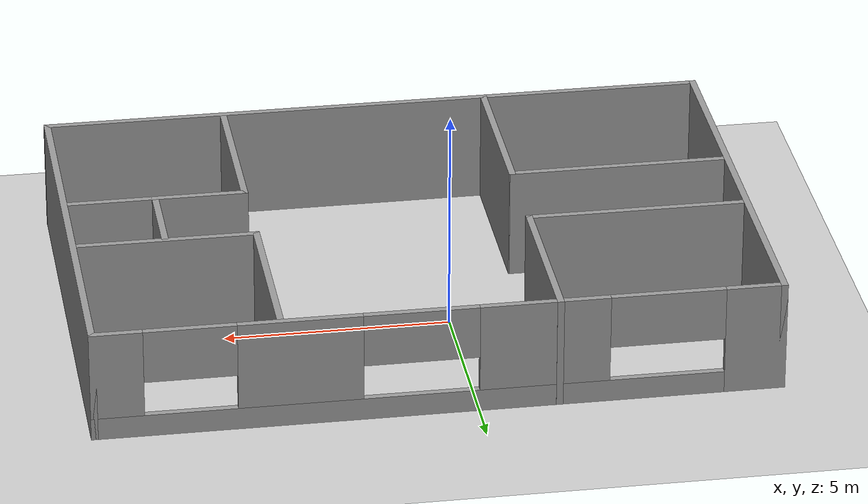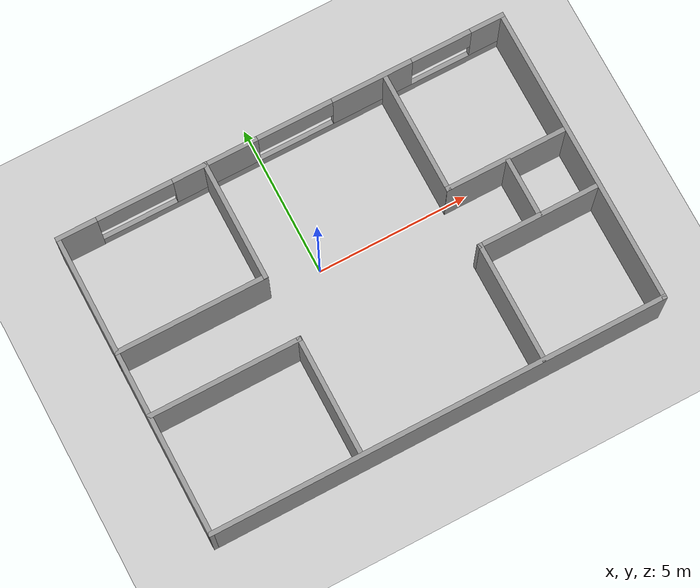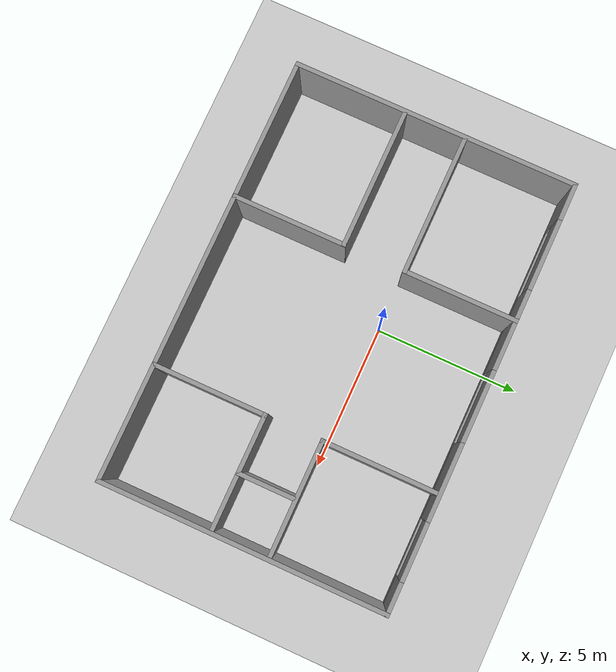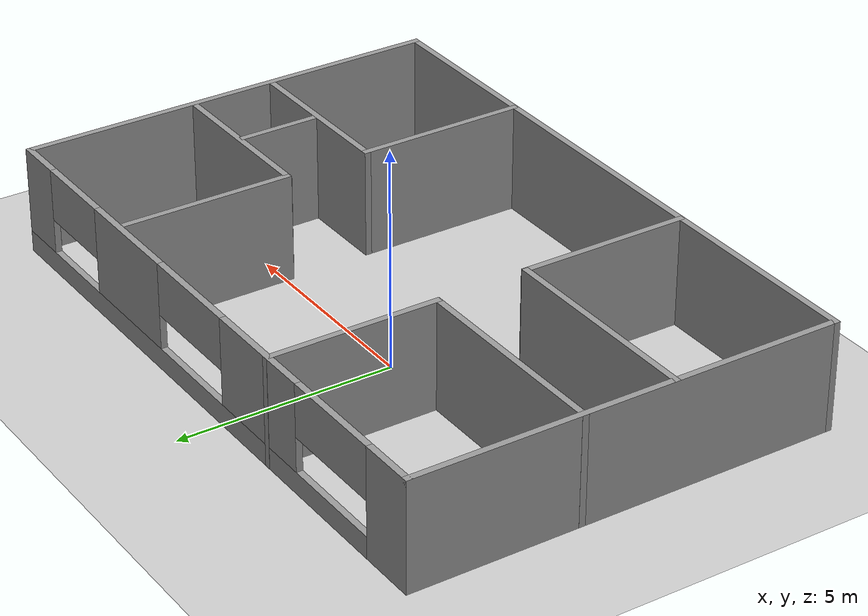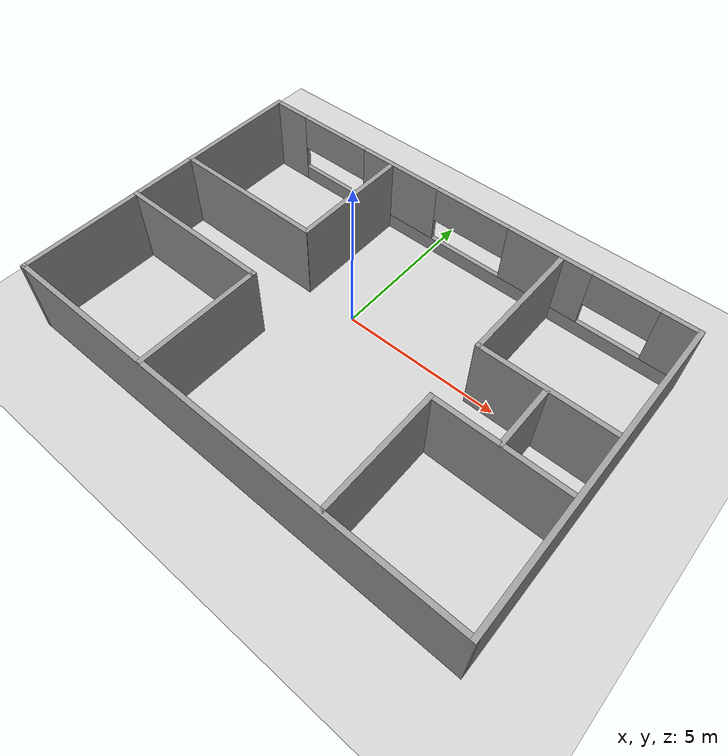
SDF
<sdf version="1.7">
 <world name="default">
  <light name="sun" type="directional">
   <pose>0 0 10 0 -0 0</pose>
   <diffuse>0.8 0.8 0.8 1</diffuse>
   <specular>0.2 0.2 0.2 1</specular>
   <attenuation>
    <range>1000</range>
    <constant>0.9</constant>
    <linear>0.01</linear>
    <quadratic>0.001</quadratic>
   </attenuation>
   <direction>-0.5 0.1 -0.9</direction>
   <spot><inner_angle>0</inner_angle><outer_angle>0</outer_angle><falloff>0</falloff></spot>
  </light>
  <model name="ground_plane">
   <static>1</static>
   <link name="link">
    <collision name="collision">
     <geometry><plane><normal>0 0 1</normal><size>100 100</size></plane></geometry>
     <surface><friction><ode><mu>100</mu><mu2>50</mu2></ode></friction></surface>
    </collision>
    <visual name="visual">
     <cast_shadows>0</cast_shadows>
     <geometry><plane><normal>0 0 1</normal><size>100 100</size></plane></geometry>
     <material>
      <script><uri>file://media/materials/scripts/gazebo.material</uri><name>Gazebo/Grey</name></script>
     </material>
    </visual>
   </link>
  </model>
  <gravity>0 0 -9.8</gravity>
  <magnetic_field>6e-06 2.3e-05 -4.2e-05</magnetic_field>
  <atmosphere type="adiabatic"/>
  <physics type="ode">
   <max_step_size>0.001</max_step_size>
   <real_time_factor>1</real_time_factor>
   <real_time_update_rate>1000</real_time_update_rate>
  </physics>
  <scene><ambient>0.4 0.4 0.4 1</ambient><background>0.7 0.7 0.7 1</background><shadows>1</shadows></scene>
  <audio><device>default</device></audio>
  <spherical_coordinates>
   <surface_model>EARTH_WGS84</surface_model>
   <latitude_deg>0</latitude_deg>
   <longitude_deg>0</longitude_deg>
   <elevation>0</elevation>
   <heading_deg>0</heading_deg>
  </spherical_coordinates>
  <model name="Untitled">
   <pose>0.821917 -1.03793 0 0 -0 0</pose>
   <link name="Wall_25">
    <pose>0.000595 4.9235 0 0 -0 0</pose>
    <visual name="Wall_25_Visual_0">
     <pose>-6.83087 0 1.25 0 -0 0</pose>
     <geometry><box><size>1.33827 0.15 2.5</size></box></geometry>
     <material>
      <script><uri>file://media/materials/scripts/gazebo.material</uri><name>Gazebo/Grey</name></script>
      <ambient>1 1 1 1</ambient>
     </material>
     <meta><layer>0</layer></meta>
    </visual>
    <collision name="Wall_25_Collision_0">
     <geometry><box><size>1.33827 0.15 2.5</size></box></geometry>
     <pose>-6.83087 0 1.25 0 -0 0</pose>
    </collision>
    <visual name="Wall_25_Visual_1">
     <pose>0.669135 0 0.25 0 -0 0</pose>
     <geometry><box><size>13.6617 0.15 0.5</size></box></geometry>
     <material>
      <script><uri>file://media/materials/scripts/gazebo.material</uri><name>Gazebo/Grey</name></script>
      <ambient>1 1 1 1</ambient>
     </material>
     <meta><layer>0</layer></meta>
    </visual>
    <collision name="Wall_25_Collision_1">
     <geometry><box><size>13.6617 0.15 0.5</size></box></geometry>
     <pose>0.669135 0 0.25 0 -0 0</pose>
    </collision>
    <visual name="Wall_25_Visual_2">
     <pose>-2.25173 0 1.5 0 -0 0</pose>
     <geometry><box><size>2.82 0.15 2</size></box></geometry>
     <material>
      <script><uri>file://media/materials/scripts/gazebo.material</uri><name>Gazebo/Grey</name></script>
      <ambient>1 1 1 1</ambient>
     </material>
     <meta><layer>0</layer></meta>
    </visual>
    <collision name="Wall_25_Collision_2">
     <geometry><box><size>2.82 0.15 2</size></box></geometry>
     <pose>-2.25173 0 1.5 0 -0 0</pose>
    </collision>
    <visual name="Wall_25_Visual_3">
     <pose>3.00327 0 1.5 0 -0 0</pose>
     <geometry><box><size>2.69 0.15 2</size></box></geometry>
     <material>
      <script><uri>file://media/materials/scripts/gazebo.material</uri><name>Gazebo/Grey</name></script>
      <ambient>1 1 1 1</ambient>
     </material>
     <meta><layer>0</layer></meta>
    </visual>
    <collision name="Wall_25_Collision_3">
     <geometry><box><size>2.69 0.15 2</size></box></geometry>
     <pose>3.00327 0 1.5 0 -0 0</pose>
    </collision>
    <visual name="Wall_25_Visual_4">
     <pose>6.92413 0 1.5 0 -0 0</pose>
     <geometry><box><size>1.15173 0.15 2</size></box></geometry>
     <material>
      <script><uri>file://media/materials/scripts/gazebo.material</uri><name>Gazebo/Grey</name></script>
      <ambient>1 1 1 1</ambient>
     </material>
     <meta><layer>0</layer></meta>
    </visual>
    <collision name="Wall_25_Collision_4">
     <geometry><box><size>1.15173 0.15 2</size></box></geometry>
     <pose>6.92413 0 1.5 0 -0 0</pose>
    </collision>
    <visual name="Wall_25_Visual_5">
     <pose>6.92413 0 1.5 0 -0 0</pose>
     <geometry><box><size>1.15173 0.15 2</size></box></geometry>
     <material>
      <script><uri>file://media/materials/scripts/gazebo.material</uri><name>Gazebo/Grey</name></script>
      <ambient>1 1 1 1</ambient>
     </material>
     <meta><layer>0</layer></meta>
    </visual>
    <collision name="Wall_25_Collision_5">
     <geometry><box><size>1.15173 0.15 2</size></box></geometry>
     <pose>6.92413 0 1.5 0 -0 0</pose>
    </collision>
    <visual name="Wall_25_Visual_6">
     <pose>-4.91173 0 1.9 0 -0 0</pose>
     <geometry><box><size>2.5 0.15 1.2</size></box></geometry>
     <material>
      <script><uri>file://media/materials/scripts/gazebo.material</uri><name>Gazebo/Grey</name></script>
      <ambient>1 1 1 1</ambient>
     </material>
     <meta><layer>0</layer></meta>
    </visual>
    <collision name="Wall_25_Collision_6">
     <geometry><box><size>2.5 0.15 1.2</size></box></geometry>
     <pose>-4.91173 0 1.9 0 -0 0</pose>
    </collision>
    <visual name="Wall_25_Visual_7">
     <pose>0.40827 0 1.9 0 -0 0</pose>
     <geometry><box><size>2.5 0.15 1.2</size></box></geometry>
     <material>
      <script><uri>file://media/materials/scripts/gazebo.material</uri><name>Gazebo/Grey</name></script>
      <ambient>1 1 1 1</ambient>
     </material>
     <meta><layer>0</layer></meta>
    </visual>
    <collision name="Wall_25_Collision_7">
     <geometry><box><size>2.5 0.15 1.2</size></box></geometry>
     <pose>0.40827 0 1.9 0 -0 0</pose>
    </collision>
    <visual name="Wall_25_Visual_8">
     <pose>5.34827 0 1.9 0 -0 0</pose>
     <geometry><box><size>2 0.15 1.2</size></box></geometry>
     <material>
      <script><uri>file://media/materials/scripts/gazebo.material</uri><name>Gazebo/Grey</name></script>
      <ambient>1 1 1 1</ambient>
     </material>
     <meta><layer>0</layer></meta>
    </visual>
    <collision name="Wall_25_Collision_8">
     <geometry><box><size>2 0.15 1.2</size></box></geometry>
     <pose>5.34827 0 1.9 0 -0 0</pose>
    </collision>
   </link>
   <link name="Wall_26">
    <collision name="Wall_26_Collision">
     <geometry><box><size>10 0.15 2.5</size></box></geometry>
     <pose>0 0 1.25 0 -0 0</pose>
    </collision>
    <visual name="Wall_26_Visual">
     <pose>0 0 1.25 0 -0 0</pose>
     <geometry><box><size>10 0.15 2.5</size></box></geometry>
     <material>
      <script><uri>file://media/materials/scripts/gazebo.material</uri><name>Gazebo/Grey</name></script>
      <ambient>1 1 1 1</ambient>
     </material>
     <meta><layer>0</layer></meta>
    </visual>
    <pose>7.4256 -0.001502 0 0 -0 -1.5708</pose>
   </link>
   <link name="Wall_27">
    <collision name="Wall_27_Collision">
     <geometry><box><size>15 0.15 2.5</size></box></geometry>
     <pose>0 0 1.25 0 -0 0</pose>
    </collision>
    <visual name="Wall_27_Visual">
     <pose>0 0 1.25 0 -0 0</pose>
     <geometry><box><size>15 0.15 2.5</size></box></geometry>
     <material>
      <script><uri>file://media/materials/scripts/gazebo.material</uri><name>Gazebo/Grey</name></script>
      <ambient>1 1 1 1</ambient>
     </material>
     <meta><layer>0</layer></meta>
    </visual>
    <pose>0.000595 -4.9265 0 0 -0 3.14159</pose>
   </link>
   <link name="Wall_28">
    <collision name="Wall_28_Collision">
     <geometry><box><size>10 0.15 2.5</size></box></geometry>
     <pose>0 0 1.25 0 -0 0</pose>
    </collision>
    <visual name="Wall_28_Visual">
     <pose>0 0 1.25 0 -0 0</pose>
     <geometry><box><size>10 0.15 2.5</size></box></geometry>
     <material>
      <script><uri>file://media/materials/scripts/gazebo.material</uri><name>Gazebo/Grey</name></script>
      <ambient>1 1 1 1</ambient>
     </material>
     <meta><layer>0</layer></meta>
    </visual>
    <pose>-7.42441 -0.001502 0 0 -0 1.5708</pose>
   </link>
   <link name="Wall_35">
    <collision name="Wall_35_Collision">
     <geometry><box><size>4 0.15 2.5</size></box></geometry>
     <pose>0 0 1.25 0 -0 0</pose>
    </collision>
    <visual name="Wall_35_Visual">
     <pose>0 0 1.25 0 -0 0</pose>
     <geometry><box><size>4 0.15 2.5</size></box></geometry>
     <material>
      <script><uri>file://media/materials/scripts/gazebo.material</uri><name>Gazebo/Grey</name></script>
      <ambient>1 1 1 1</ambient>
     </material>
     <meta><layer>0</layer></meta>
    </visual>
    <pose>5.34946 0.91485 0 0 -0 0</pose>
   </link>
   <link name="Wall_39">
    <collision name="Wall_39_Collision">
     <geometry><box><size>4 0.15 2.5</size></box></geometry>
     <pose>0 0 1.25 0 -0 0</pose>
    </collision>
    <visual name="Wall_39_Visual">
     <pose>0 0 1.25 0 -0 0</pose>
     <geometry><box><size>4 0.15 2.5</size></box></geometry>
     <material>
      <script><uri>file://media/materials/scripts/gazebo.material</uri><name>Gazebo/Grey</name></script>
      <ambient>1 1 1 1</ambient>
     </material>
     <meta><layer>0</layer></meta>
    </visual>
    <pose>5.35317 -1.06004 0 0 -0 3.14159</pose>
   </link>
   <link name="Wall_41">
    <collision name="Wall_41_Collision">
     <geometry><box><size>4 0.15 2.5</size></box></geometry>
     <pose>0 0 1.25 0 -0 0</pose>
    </collision>
    <visual name="Wall_41_Visual">
     <pose>0 0 1.25 0 -0 0</pose>
     <geometry><box><size>4 0.15 2.5</size></box></geometry>
     <material>
      <script><uri>file://media/materials/scripts/gazebo.material</uri><name>Gazebo/Grey</name></script>
      <ambient>1 1 1 1</ambient>
     </material>
     <meta><layer>0</layer></meta>
    </visual>
    <pose>3.43036 -2.98592 0 0 -0 1.5708</pose>
   </link>
   <link name="Wall_43">
    <collision name="Wall_43_Collision">
     <geometry><box><size>5 0.15 2.5</size></box></geometry>
     <pose>0 0 1.25 0 -0 0</pose>
    </collision>
    <visual name="Wall_43_Visual">
     <pose>0 0 1.25 0 -0 0</pose>
     <geometry><box><size>5 0.15 2.5</size></box></geometry>
     <material>
      <script><uri>file://media/materials/scripts/gazebo.material</uri><name>Gazebo/Grey</name></script>
      <ambient>1 1 1 1</ambient>
     </material>
     <meta><layer>0</layer></meta>
    </visual>
    <pose>-4.99908 -1.05983 0 0 -0 0</pose>
   </link>
   <link name="Wall_45">
    <collision name="Wall_45_Collision">
     <geometry><box><size>4 0.15 2.5</size></box></geometry>
     <pose>0 0 1.25 0 -0 0</pose>
    </collision>
    <visual name="Wall_45_Visual">
     <pose>0 0 1.25 0 -0 0</pose>
     <geometry><box><size>4 0.15 2.5</size></box></geometry>
     <material>
      <script><uri>file://media/materials/scripts/gazebo.material</uri><name>Gazebo/Grey</name></script>
      <ambient>1 1 1 1</ambient>
     </material>
     <meta><layer>0</layer></meta>
    </visual>
    <pose>-2.55492 -2.98592 0 0 -0 1.5708</pose>
   </link>
   <link name="Wall_47">
    <collision name="Wall_47_Collision">
     <geometry><box><size>4 0.15 2.5</size></box></geometry>
     <pose>0 0 1.25 0 -0 0</pose>
    </collision>
    <visual name="Wall_47_Visual">
     <pose>0 0 1.25 0 -0 0</pose>
     <geometry><box><size>4 0.15 2.5</size></box></geometry>
     <material>
      <script><uri>file://media/materials/scripts/gazebo.material</uri><name>Gazebo/Grey</name></script>
      <ambient>1 1 1 1</ambient>
     </material>
     <meta><layer>0</layer></meta>
    </visual>
    <pose>-2.57342 3.0015 0 0 -0 -1.5708</pose>
   </link>
   <link name="Wall_49">
    <collision name="Wall_49_Collision">
     <geometry><box><size>5 0.15 2.5</size></box></geometry>
     <pose>0 0 1.25 0 -0 0</pose>
    </collision>
    <visual name="Wall_49_Visual">
     <pose>0 0 1.25 0 -0 0</pose>
     <geometry><box><size>5 0.15 2.5</size></box></geometry>
     <material>
      <script><uri>file://media/materials/scripts/gazebo.material</uri><name>Gazebo/Grey</name></script>
      <ambient>1 1 1 1</ambient>
     </material>
     <meta><layer>0</layer></meta>
    </visual>
    <pose>-5.0006 1.06563 0 0 -0 0</pose>
   </link>
   <link name="Wall_52">
    <collision name="Wall_52_Collision">
     <geometry><box><size>2 0.15 2.5</size></box></geometry>
     <pose>0 0 1.25 0 -0 0</pose>
    </collision>
    <visual name="Wall_52_Visual">
     <pose>0 0 1.25 0 -0 0</pose>
     <geometry><box><size>2 0.15 2.5</size></box></geometry>
     <material>
      <script><uri>file://media/materials/scripts/gazebo.material</uri><name>Gazebo/Grey</name></script>
      <ambient>1 1 1 1</ambient>
     </material>
     <meta><layer>0</layer></meta>
    </visual>
    <pose>5.41031 -0.108639 0 0 -0 -1.5708</pose>
   </link>
   <link name="Wall_54">
    <collision name="Wall_54_Collision">
     <geometry><box><size>4 0.15 2.5</size></box></geometry>
     <pose>0 0 1.25 0 -0 0</pose>
    </collision>
    <visual name="Wall_54_Visual">
     <pose>0 0 1.25 0 -0 0</pose>
     <geometry><box><size>4 0.15 2.5</size></box></geometry>
     <material>
      <script><uri>file://media/materials/scripts/gazebo.material</uri><name>Gazebo/Grey</name></script>
      <ambient>1 1 1 1</ambient>
     </material>
     <meta><layer>0</layer></meta>
    </visual>
    <pose>3.41846 2.84798 0 0 -0 -1.5708</pose>
   </link>
   <static>1</static>
  </model>
 </world>
</sdf>
